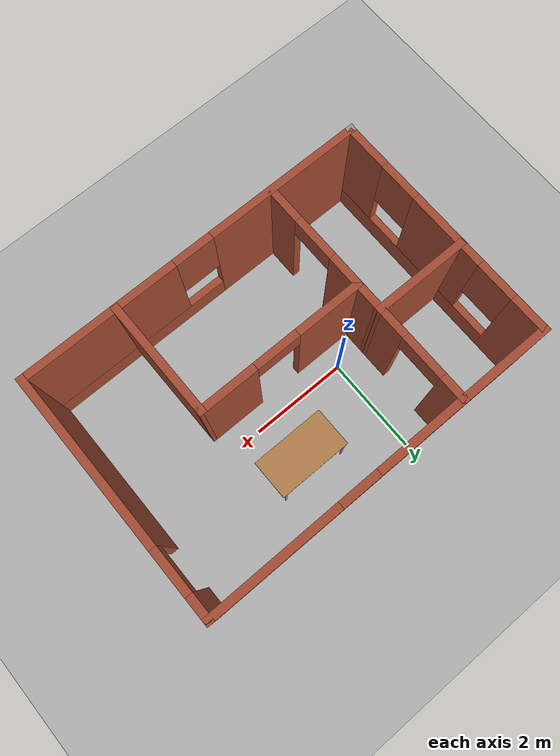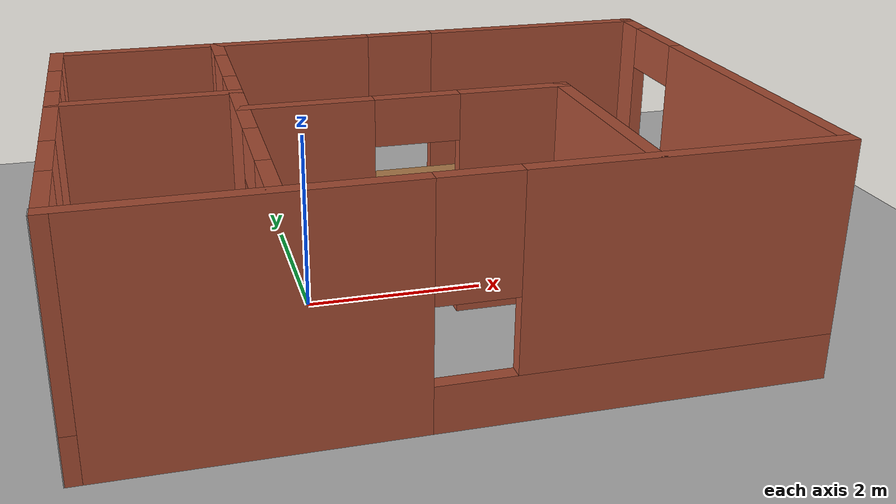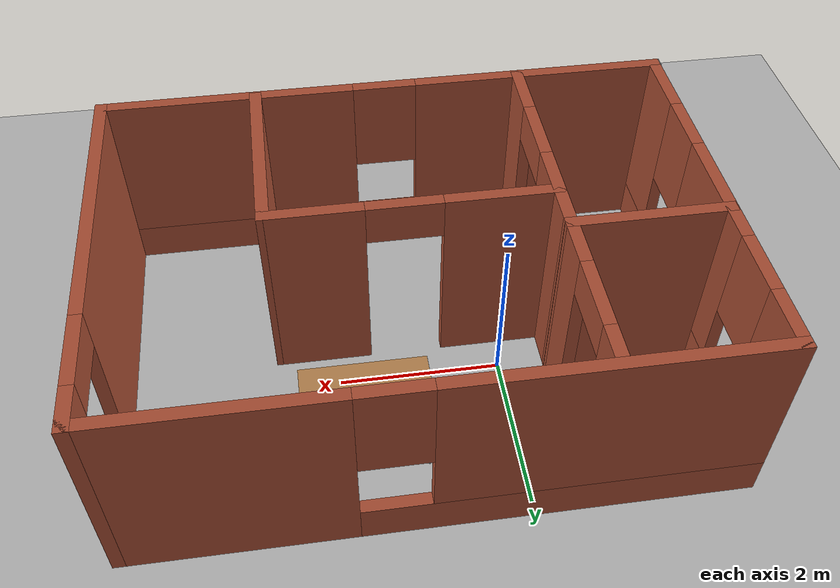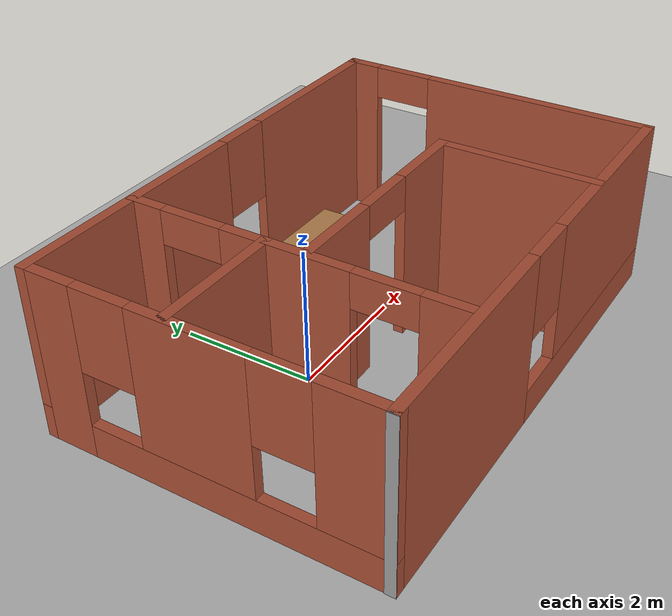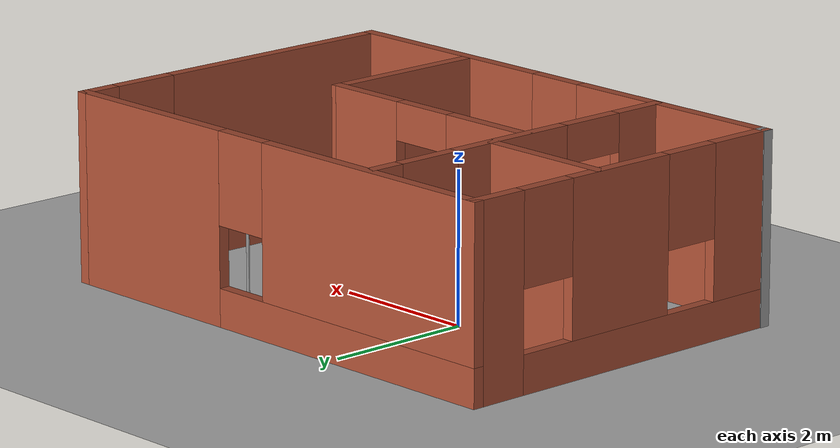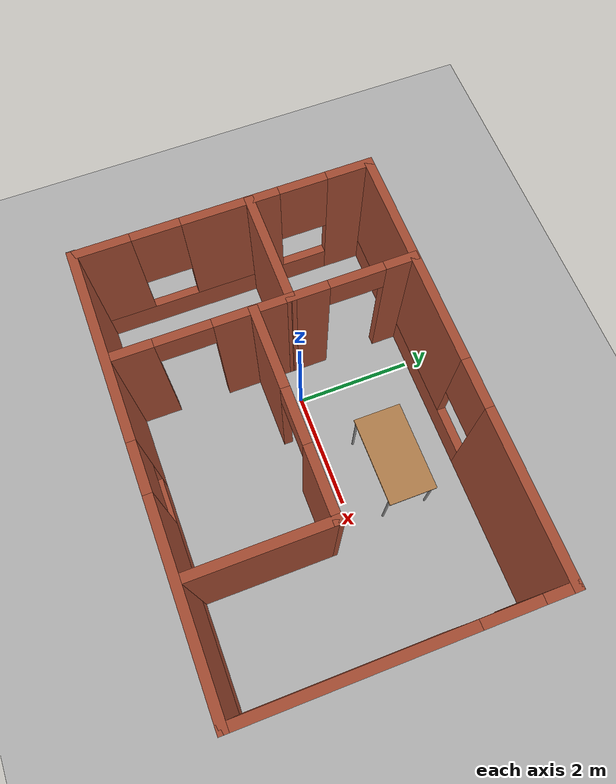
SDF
<sdf version="1.9">
 <world name="default">
  <gravity>0 0 -9.8</gravity>
  <magnetic_field>6e-06 2.3e-05 -4.2e-05</magnetic_field>
  <atmosphere type="adiabatic"/>
  <physics type="ode">
   <max_step_size>0.001</max_step_size>
   <real_time_factor>1</real_time_factor>
   <real_time_update_rate>1000</real_time_update_rate>
  </physics>
  <scene><ambient>0.4 0.4 0.4 1</ambient><background>0.7 0.7 0.7 1</background><shadows>true</shadows></scene>
  <model name="flat03">
   <pose>1.055 -0.325 0 0 -0 0</pose>
   <link name="Wall_0">
    <collision name="Wall_0_Collision">
     <geometry><box><size>0.16 0.15 2.5</size></box></geometry>
     <pose>0 0 1.25 0 -0 0</pose>
    </collision>
    <visual name="Wall_0_Visual">
     <pose>0 0 1.25 0 -0 0</pose>
     <geometry><box><size>0.16 0.15 2.5</size></box></geometry>
     <material>
      <script><uri>file://media/materials/scripts/gazebo.material</uri><name>Gazebo/Grey</name></script>
      <ambient>1 1 1 1</ambient>
     </material>
     <meta><layer>0</layer></meta>
    </visual>
    <pose>-3.55 -2.425 0 0 -0 0</pose>
    <inertial>
     <mass>1</mass>
     <inertia><ixx>1</ixx><ixy>0</ixy><ixz>0</ixz><iyy>1</iyy><iyz>0</iyz><izz>1</izz></inertia>
    </inertial>
   </link>
   <link name="Wall_1">
    <pose>0.005 -2.425 0 0 -0 0</pose>
    <visual name="Wall_1_Visual_0">
     <pose>-2.00678 0 1.25 0 -0 0</pose>
     <geometry><box><size>3.23644 0.15 2.5</size></box></geometry>
     <material>
      <script><uri>file://media/materials/scripts/gazebo.material</uri><name>Gazebo/Bricks</name></script>
      <ambient>0.435294 0.796078 0.67451 1</ambient>
     </material>
     <meta><layer>0</layer></meta>
    </visual>
    <collision name="Wall_1_Collision_0">
     <geometry><box><size>3.23644 0.15 2.5</size></box></geometry>
     <pose>-2.00678 0 1.25 0 -0 0</pose>
    </collision>
    <visual name="Wall_1_Visual_1">
     <pose>1.61822 0 0.25 0 -0 0</pose>
     <geometry><box><size>4.01356 0.15 0.5</size></box></geometry>
     <material>
      <script><uri>file://media/materials/scripts/gazebo.material</uri><name>Gazebo/Bricks</name></script>
      <ambient>0.435294 0.796078 0.67451 1</ambient>
     </material>
     <meta><layer>0</layer></meta>
    </visual>
    <collision name="Wall_1_Collision_1">
     <geometry><box><size>4.01356 0.15 0.5</size></box></geometry>
     <pose>1.61822 0 0.25 0 -0 0</pose>
    </collision>
    <visual name="Wall_1_Visual_2">
     <pose>2.01822 0 1.5 0 -0 0</pose>
     <geometry><box><size>3.21356 0.15 2</size></box></geometry>
     <material>
      <script><uri>file://media/materials/scripts/gazebo.material</uri><name>Gazebo/Bricks</name></script>
      <ambient>0.435294 0.796078 0.67451 1</ambient>
     </material>
     <meta><layer>0</layer></meta>
    </visual>
    <collision name="Wall_1_Collision_2">
     <geometry><box><size>3.21356 0.15 2</size></box></geometry>
     <pose>2.01822 0 1.5 0 -0 0</pose>
    </collision>
    <visual name="Wall_1_Visual_3">
     <pose>0.011439 0 1.9 0 -0 0</pose>
     <geometry><box><size>0.8 0.15 1.2</size></box></geometry>
     <material>
      <script><uri>file://media/materials/scripts/gazebo.material</uri><name>Gazebo/Bricks</name></script>
      <ambient>0.435294 0.796078 0.67451 1</ambient>
     </material>
     <meta><layer>0</layer></meta>
    </visual>
    <collision name="Wall_1_Collision_3">
     <geometry><box><size>0.8 0.15 1.2</size></box></geometry>
     <pose>0.011439 0 1.9 0 -0 0</pose>
    </collision>
    <inertial>
     <mass>1</mass>
     <inertia><ixx>1</ixx><ixy>0</ixy><ixz>0</ixz><iyy>1</iyy><iyz>0</iyz><izz>1</izz></inertia>
    </inertial>
   </link>
   <link name="Wall_14">
    <pose>-1.71527 -0.992815 0 0 0 -1.572</pose>
    <visual name="Wall_14_Visual_0">
     <pose>-0.836885 0 1.25 0 -0 0</pose>
     <geometry><box><size>1.29625 0.15 2.5</size></box></geometry>
     <material>
      <script><uri>file://media/materials/scripts/gazebo.material</uri><name>Gazebo/Bricks</name></script>
      <ambient>1 1 1 1</ambient>
     </material>
     <meta><layer>0</layer></meta>
    </visual>
    <collision name="Wall_14_Collision_0">
     <geometry><box><size>1.29625 0.15 2.5</size></box></geometry>
     <pose>-0.836885 0 1.25 0 -0 0</pose>
    </collision>
    <visual name="Wall_14_Visual_1">
     <pose>1.09812 0 1.25 0 -0 0</pose>
     <geometry><box><size>0.77377 0.15 2.5</size></box></geometry>
     <material>
      <script><uri>file://media/materials/scripts/gazebo.material</uri><name>Gazebo/Bricks</name></script>
      <ambient>1 1 1 1</ambient>
     </material>
     <meta><layer>0</layer></meta>
    </visual>
    <collision name="Wall_14_Collision_1">
     <geometry><box><size>0.77377 0.15 2.5</size></box></geometry>
     <pose>1.09812 0 1.25 0 -0 0</pose>
    </collision>
    <visual name="Wall_14_Visual_2">
     <pose>0.261239 0 2.25 0 -0 0</pose>
     <geometry><box><size>0.9 0.15 0.5</size></box></geometry>
     <material>
      <script><uri>file://media/materials/scripts/gazebo.material</uri><name>Gazebo/Bricks</name></script>
      <ambient>1 1 1 1</ambient>
     </material>
     <meta><layer>0</layer></meta>
    </visual>
    <collision name="Wall_14_Collision_2">
     <geometry><box><size>0.9 0.15 0.5</size></box></geometry>
     <pose>0.261239 0 2.25 0 -0 0</pose>
    </collision>
    <inertial>
     <mass>1</mass>
     <inertia><ixx>1</ixx><ixy>0</ixy><ixz>0</ixz><iyy>1</iyy><iyz>0</iyz><izz>1</izz></inertia>
    </inertial>
   </link>
   <link name="Wall_16">
    <pose>-0.027331 -0.154217 0 0 -0 0</pose>
    <visual name="Wall_16_Visual_0">
     <pose>-1.05556 0 1.25 0 -0 0</pose>
     <geometry><box><size>1.38888 0.15 2.5</size></box></geometry>
     <material>
      <script><uri>file://media/materials/scripts/gazebo.material</uri><name>Gazebo/Bricks</name></script>
      <ambient>1 0.764706 0.305882 1</ambient>
     </material>
     <meta><layer>0</layer></meta>
    </visual>
    <collision name="Wall_16_Collision_0">
     <geometry><box><size>1.38888 0.15 2.5</size></box></geometry>
     <pose>-1.05556 0 1.25 0 -0 0</pose>
    </collision>
    <visual name="Wall_16_Visual_1">
     <pose>1.14444 0 1.25 0 -0 0</pose>
     <geometry><box><size>1.21112 0.15 2.5</size></box></geometry>
     <material>
      <script><uri>file://media/materials/scripts/gazebo.material</uri><name>Gazebo/Bricks</name></script>
      <ambient>1 0.764706 0.305882 1</ambient>
     </material>
     <meta><layer>0</layer></meta>
    </visual>
    <collision name="Wall_16_Collision_1">
     <geometry><box><size>1.21112 0.15 2.5</size></box></geometry>
     <pose>1.14444 0 1.25 0 -0 0</pose>
    </collision>
    <visual name="Wall_16_Visual_2">
     <pose>0.088882 0 2.25 0 -0 0</pose>
     <geometry><box><size>0.9 0.15 0.5</size></box></geometry>
     <material>
      <script><uri>file://media/materials/scripts/gazebo.material</uri><name>Gazebo/Bricks</name></script>
      <ambient>1 0.764706 0.305882 1</ambient>
     </material>
     <meta><layer>0</layer></meta>
    </visual>
    <collision name="Wall_16_Collision_2">
     <geometry><box><size>0.9 0.15 0.5</size></box></geometry>
     <pose>0.088882 0 2.25 0 -0 0</pose>
    </collision>
    <inertial>
     <mass>1</mass>
     <inertia><ixx>1</ixx><ixy>0</ixy><ixz>0</ixz><iyy>1</iyy><iyz>0</iyz><izz>1</izz></inertia>
    </inertial>
   </link>
   <link name="Wall_17">
    <collision name="Wall_17_Collision">
     <geometry><box><size>2.40353 0.15 2.5</size></box></geometry>
     <pose>0 0 1.25 0 -0 0</pose>
    </collision>
    <visual name="Wall_17_Visual">
     <pose>0 0 1.25 0 -0 0</pose>
     <geometry><box><size>2.40353 0.15 2.5</size></box></geometry>
     <material>
      <script><uri>file://media/materials/scripts/gazebo.material</uri><name>Gazebo/Bricks</name></script>
      <ambient>1 0 0.498039 1</ambient>
     </material>
     <meta><layer>0</layer></meta>
    </visual>
    <pose>1.64817 -1.28098 0 0 0 -1.57035</pose>
    <inertial>
     <mass>1</mass>
     <inertia><ixx>1</ixx><ixy>0</ixy><ixz>0</ixz><iyy>1</iyy><iyz>0</iyz><izz>1</izz></inertia>
    </inertial>
   </link>
   <link name="Wall_2">
    <pose>3.555 0 0 0 -0 1.5708</pose>
    <visual name="Wall_2_Visual_0">
     <pose>-0.723704 0 1.25 0 -0 0</pose>
     <geometry><box><size>3.55259 0.15 2.5</size></box></geometry>
     <material>
      <script><uri>file://media/materials/scripts/gazebo.material</uri><name>Gazebo/Bricks</name></script>
      <ambient>0.435294 0.796078 0.67451 1</ambient>
     </material>
     <meta><layer>0</layer></meta>
    </visual>
    <collision name="Wall_2_Collision_0">
     <geometry><box><size>3.55259 0.15 2.5</size></box></geometry>
     <pose>-0.723704 0 1.25 0 -0 0</pose>
    </collision>
    <visual name="Wall_2_Visual_1">
     <pose>2.2263 0 1.25 0 -0 0</pose>
     <geometry><box><size>0.547408 0.15 2.5</size></box></geometry>
     <material>
      <script><uri>file://media/materials/scripts/gazebo.material</uri><name>Gazebo/Bricks</name></script>
      <ambient>0.435294 0.796078 0.67451 1</ambient>
     </material>
     <meta><layer>0</layer></meta>
    </visual>
    <collision name="Wall_2_Collision_1">
     <geometry><box><size>0.547408 0.15 2.5</size></box></geometry>
     <pose>2.2263 0 1.25 0 -0 0</pose>
    </collision>
    <visual name="Wall_2_Visual_2">
     <pose>1.50259 0 2.25 0 -0 0</pose>
     <geometry><box><size>0.9 0.15 0.5</size></box></geometry>
     <material>
      <script><uri>file://media/materials/scripts/gazebo.material</uri><name>Gazebo/Bricks</name></script>
      <ambient>0.435294 0.796078 0.67451 1</ambient>
     </material>
     <meta><layer>0</layer></meta>
    </visual>
    <collision name="Wall_2_Collision_2">
     <geometry><box><size>0.9 0.15 0.5</size></box></geometry>
     <pose>1.50259 0 2.25 0 -0 0</pose>
    </collision>
    <inertial>
     <mass>1</mass>
     <inertia><ixx>1</ixx><ixy>0</ixy><ixz>0</ixz><iyy>1</iyy><iyz>0</iyz><izz>1</izz></inertia>
    </inertial>
   </link>
   <link name="Wall_3">
    <pose>0.005 2.425 0 0 -0 3.14159</pose>
    <visual name="Wall_3_Visual_0">
     <pose>-2.26634 0 1.25 0 -0 0</pose>
     <geometry><box><size>2.71732 0.15 2.5</size></box></geometry>
     <material>
      <script><uri>file://media/materials/scripts/gazebo.material</uri><name>Gazebo/Bricks</name></script>
      <ambient>1 0.764706 0.305882 1</ambient>
     </material>
     <meta><layer>0</layer></meta>
    </visual>
    <collision name="Wall_3_Collision_0">
     <geometry><box><size>2.71732 0.15 2.5</size></box></geometry>
     <pose>-2.26634 0 1.25 0 -0 0</pose>
    </collision>
    <visual name="Wall_3_Visual_1">
     <pose>1.35866 0 0.25 0 -0 0</pose>
     <geometry><box><size>4.53268 0.15 0.5</size></box></geometry>
     <material>
      <script><uri>file://media/materials/scripts/gazebo.material</uri><name>Gazebo/Bricks</name></script>
      <ambient>1 0.764706 0.305882 1</ambient>
     </material>
     <meta><layer>0</layer></meta>
    </visual>
    <collision name="Wall_3_Collision_1">
     <geometry><box><size>4.53268 0.15 0.5</size></box></geometry>
     <pose>1.35866 0 0.25 0 -0 0</pose>
    </collision>
    <visual name="Wall_3_Visual_2">
     <pose>1.75866 0 1.5 0 -0 0</pose>
     <geometry><box><size>3.73268 0.15 2</size></box></geometry>
     <material>
      <script><uri>file://media/materials/scripts/gazebo.material</uri><name>Gazebo/Bricks</name></script>
      <ambient>1 0.764706 0.305882 1</ambient>
     </material>
     <meta><layer>0</layer></meta>
    </visual>
    <collision name="Wall_3_Collision_2">
     <geometry><box><size>3.73268 0.15 2</size></box></geometry>
     <pose>1.75866 0 1.5 0 -0 0</pose>
    </collision>
    <visual name="Wall_3_Visual_3">
     <pose>-0.507676 0 1.9 0 -0 0</pose>
     <geometry><box><size>0.8 0.15 1.2</size></box></geometry>
     <material>
      <script><uri>file://media/materials/scripts/gazebo.material</uri><name>Gazebo/Bricks</name></script>
      <ambient>1 0.764706 0.305882 1</ambient>
     </material>
     <meta><layer>0</layer></meta>
    </visual>
    <collision name="Wall_3_Collision_3">
     <geometry><box><size>0.8 0.15 1.2</size></box></geometry>
     <pose>-0.507676 0 1.9 0 -0 0</pose>
    </collision>
    <inertial>
     <mass>1</mass>
     <inertia><ixx>1</ixx><ixy>0</ixy><ixz>0</ixz><iyy>1</iyy><iyz>0</iyz><izz>1</izz></inertia>
    </inertial>
   </link>
   <link name="Wall_4">
    <pose>-3.545 0 0 0 0 -1.5708</pose>
    <visual name="Wall_4_Visual_0">
     <pose>-2.09979 0 1.25 0 -0 0</pose>
     <geometry><box><size>0.800414 0.15 2.5</size></box></geometry>
     <material>
      <script><uri>file://media/materials/scripts/gazebo.material</uri><name>Gazebo/Bricks</name></script>
      <ambient>1 0 0.498039 1</ambient>
     </material>
     <meta><layer>0</layer></meta>
    </visual>
    <collision name="Wall_4_Collision_0">
     <geometry><box><size>0.800414 0.15 2.5</size></box></geometry>
     <pose>-2.09979 0 1.25 0 -0 0</pose>
    </collision>
    <visual name="Wall_4_Visual_1">
     <pose>0.400207 0 0.25 0 -0 0</pose>
     <geometry><box><size>4.19959 0.15 0.5</size></box></geometry>
     <material>
      <script><uri>file://media/materials/scripts/gazebo.material</uri><name>Gazebo/Bricks</name></script>
      <ambient>1 0 0.498039 1</ambient>
     </material>
     <meta><layer>0</layer></meta>
    </visual>
    <collision name="Wall_4_Collision_1">
     <geometry><box><size>4.19959 0.15 0.5</size></box></geometry>
     <pose>0.400207 0 0.25 0 -0 0</pose>
    </collision>
    <visual name="Wall_4_Visual_2">
     <pose>-0.092828 0 1.5 0 -0 0</pose>
     <geometry><box><size>1.61352 0.15 2</size></box></geometry>
     <material>
      <script><uri>file://media/materials/scripts/gazebo.material</uri><name>Gazebo/Bricks</name></script>
      <ambient>1 0 0.498039 1</ambient>
     </material>
     <meta><layer>0</layer></meta>
    </visual>
    <collision name="Wall_4_Collision_2">
     <geometry><box><size>1.61352 0.15 2</size></box></geometry>
     <pose>-0.092828 0 1.5 0 -0 0</pose>
    </collision>
    <visual name="Wall_4_Visual_3">
     <pose>2.00697 0 1.5 0 -0 0</pose>
     <geometry><box><size>0.986071 0.15 2</size></box></geometry>
     <material>
      <script><uri>file://media/materials/scripts/gazebo.material</uri><name>Gazebo/Bricks</name></script>
      <ambient>1 0 0.498039 1</ambient>
     </material>
     <meta><layer>0</layer></meta>
    </visual>
    <collision name="Wall_4_Collision_3">
     <geometry><box><size>0.986071 0.15 2</size></box></geometry>
     <pose>2.00697 0 1.5 0 -0 0</pose>
    </collision>
    <visual name="Wall_4_Visual_4">
     <pose>-1.29959 0 1.9 0 -0 0</pose>
     <geometry><box><size>0.8 0.15 1.2</size></box></geometry>
     <material>
      <script><uri>file://media/materials/scripts/gazebo.material</uri><name>Gazebo/Bricks</name></script>
      <ambient>1 0 0.498039 1</ambient>
     </material>
     <meta><layer>0</layer></meta>
    </visual>
    <collision name="Wall_4_Collision_4">
     <geometry><box><size>0.8 0.15 1.2</size></box></geometry>
     <pose>-1.29959 0 1.9 0 -0 0</pose>
    </collision>
    <visual name="Wall_4_Visual_5">
     <pose>1.11393 0 1.9 0 -0 0</pose>
     <geometry><box><size>0.8 0.15 1.2</size></box></geometry>
     <material>
      <script><uri>file://media/materials/scripts/gazebo.material</uri><name>Gazebo/Bricks</name></script>
      <ambient>1 0 0.498039 1</ambient>
     </material>
     <meta><layer>0</layer></meta>
    </visual>
    <collision name="Wall_4_Collision_5">
     <geometry><box><size>0.8 0.15 1.2</size></box></geometry>
     <pose>1.11393 0 1.9 0 -0 0</pose>
    </collision>
    <inertial>
     <mass>1</mass>
     <inertia><ixx>1</ixx><ixy>0</ixy><ixz>0</ixz><iyy>1</iyy><iyz>0</iyz><izz>1</izz></inertia>
    </inertial>
   </link>
   <link name="Wall_6">
    <collision name="Wall_6_Collision">
     <geometry><box><size>1.97088 0.15 2.5</size></box></geometry>
     <pose>0 0 1.25 0 -0 0</pose>
    </collision>
    <visual name="Wall_6_Visual">
     <pose>0 0 1.25 0 -0 0</pose>
     <geometry><box><size>1.97088 0.15 2.5</size></box></geometry>
     <material>
      <script><uri>file://media/materials/scripts/gazebo.material</uri><name>Gazebo/Bricks</name></script>
      <ambient>1 1 1 1</ambient>
     </material>
     <meta><layer>0</layer></meta>
    </visual>
    <pose>-2.62401 0.417132 0 0 -0 6.8e-05</pose>
    <inertial>
     <mass>1</mass>
     <inertia><ixx>1</ixx><ixy>0</ixy><ixz>0</ixz><iyy>1</iyy><iyz>0</iyz><izz>1</izz></inertia>
    </inertial>
   </link>
   <link name="Wall_7">
    <pose>-1.71475 1.41146 0 0 -0 1.57197</pose>
    <visual name="Wall_7_Visual_0">
     <pose>-0.72529 0 1.25 0 -0 0</pose>
     <geometry><box><size>0.687956 0.15 2.5</size></box></geometry>
     <material>
      <script><uri>file://media/materials/scripts/gazebo.material</uri><name>Gazebo/Bricks</name></script>
      <ambient>1 1 1 1</ambient>
     </material>
     <meta><layer>0</layer></meta>
    </visual>
    <collision name="Wall_7_Collision_0">
     <geometry><box><size>0.687956 0.15 2.5</size></box></geometry>
     <pose>-0.72529 0 1.25 0 -0 0</pose>
    </collision>
    <visual name="Wall_7_Visual_1">
     <pose>0.793978 0 1.25 0 -0 0</pose>
     <geometry><box><size>0.55058 0.15 2.5</size></box></geometry>
     <material>
      <script><uri>file://media/materials/scripts/gazebo.material</uri><name>Gazebo/Bricks</name></script>
      <ambient>1 1 1 1</ambient>
     </material>
     <meta><layer>0</layer></meta>
    </visual>
    <collision name="Wall_7_Collision_1">
     <geometry><box><size>0.55058 0.15 2.5</size></box></geometry>
     <pose>0.793978 0 1.25 0 -0 0</pose>
    </collision>
    <visual name="Wall_7_Visual_2">
     <pose>0.068688 0 2.25 0 -0 0</pose>
     <geometry><box><size>0.9 0.15 0.5</size></box></geometry>
     <material>
      <script><uri>file://media/materials/scripts/gazebo.material</uri><name>Gazebo/Bricks</name></script>
      <ambient>1 1 1 1</ambient>
     </material>
     <meta><layer>0</layer></meta>
    </visual>
    <collision name="Wall_7_Collision_2">
     <geometry><box><size>0.9 0.15 0.5</size></box></geometry>
     <pose>0.068688 0 2.25 0 -0 0</pose>
    </collision>
    <inertial>
     <mass>1</mass>
     <inertia><ixx>1</ixx><ixy>0</ixy><ixz>0</ixz><iyy>1</iyy><iyz>0</iyz><izz>1</izz></inertia>
    </inertial>
   </link>
   <static>true</static>
  </model>
  <model name="ground_plane">
   <static>true</static>
   <link name="link">
    <collision name="collision">
     <geometry><plane><normal>0 0 1</normal><size>100 100</size></plane></geometry>
     <surface><friction><ode><mu>100</mu><mu2>50</mu2></ode></friction></surface>
    </collision>
    <visual name="visual">
     <cast_shadows>false</cast_shadows>
     <geometry><plane><normal>0 0 1</normal><size>100 100</size></plane></geometry>
     <material>
      <ambient>0.3 0.3 0.3 1</ambient>
      <diffuse>0.7 0.7 0.7 1</diffuse>
      <specular>0.01 0.01 0.01 1</specular>
     </material>
    </visual>
    <inertial>
     <mass>1</mass>
     <inertia><ixx>1</ixx><ixy>0</ixy><ixz>0</ixz><iyy>1</iyy><iyz>0</iyz><izz>1</izz></inertia>
    </inertial>
   </link>
   <pose>-3.27364 0.089503 0 0 -0 0</pose>
  </model>
  <model name="Table">
   <static>true</static>
   <link name="link">
    <collision name="surface">
     <pose>0 0 1.0 0 0 0</pose>
     <geometry><box><size>1.5 0.8 0.03</size></box></geometry>
     <surface><friction><ode><mu>0.59999999999999998</mu><mu2>0.59999999999999998</mu2></ode></friction></surface>
    </collision>
    <visual name="visual1">
     <pose>0 0 1.0 0 0 0</pose>
     <geometry><box><size>1.5 0.8 0.03</size></box></geometry>
     <material>
      <diffuse>1 1 1 1</diffuse>
      <script><uri>file://media/materials/scripts/gazebo.material</uri><name>Gazebo/Wood</name></script>
      <pbr>
       <metal>
        <albedo_map>https://fuel.gazebosim.org/1.0/openrobotics/models/table/4/files/Table_Diffuse.jpg</albedo_map>
       </metal>
      </pbr>
     </material>
    </visual>
    <collision name="front_left_leg">
     <pose>0.68 0.38 0.5 0 0 0</pose>
     <geometry><cylinder><radius>0.02</radius><length>1</length></cylinder></geometry>
    </collision>
    <visual name="front_left_leg">
     <pose>0.68 0.38 0.5 0 0 0</pose>
     <geometry><cylinder><radius>0.02</radius><length>1</length></cylinder></geometry>
     <material>
      <diffuse>0.5 0.5 0.5 1</diffuse>
      <script><uri>file://media/materials/scripts/gazebo.material</uri><name>Gazebo/Grey</name></script>
     </material>
    </visual>
    <collision name="front_right_leg">
     <pose>0.68 -0.38 0.5 0 0 0</pose>
     <geometry><cylinder><radius>0.02</radius><length>1</length></cylinder></geometry>
    </collision>
    <visual name="front_right_leg">
     <pose>0.68 -0.38 0.5 0 0 0</pose>
     <geometry><cylinder><radius>0.02</radius><length>1</length></cylinder></geometry>
     <material>
      <diffuse>0.5 0.5 0.5 1</diffuse>
      <script><uri>file://media/materials/scripts/gazebo.material</uri><name>Gazebo/Grey</name></script>
     </material>
    </visual>
    <collision name="back_right_leg">
     <pose>-0.68 -0.38 0.5 0 0 0</pose>
     <geometry><cylinder><radius>0.02</radius><length>1</length></cylinder></geometry>
    </collision>
    <visual name="back_right_leg">
     <pose>-0.68 -0.38 0.5 0 0 0</pose>
     <geometry><cylinder><radius>0.02</radius><length>1</length></cylinder></geometry>
     <material>
      <diffuse>0.5 0.5 0.5 1</diffuse>
      <script><uri>file://media/materials/scripts/gazebo.material</uri><name>Gazebo/Grey</name></script>
     </material>
    </visual>
    <collision name="back_left_leg">
     <pose>-0.68 0.38 0.5 0 0 0</pose>
     <geometry><cylinder><radius>0.02</radius><length>1</length></cylinder></geometry>
    </collision>
    <visual name="back_left_leg">
     <pose>-0.68 0.38 0.5 0 0 0</pose>
     <geometry><cylinder><radius>0.02</radius><length>1</length></cylinder></geometry>
     <material>
      <diffuse>0.5 0.5 0.5 1</diffuse>
      <script><uri>file://media/materials/scripts/gazebo.material</uri><name>Gazebo/Grey</name></script>
     </material>
    </visual>
    <inertial>
     <mass>1</mass>
     <inertia><ixx>1</ixx><ixy>0</ixy><ixz>0</ixz><iyy>1</iyy><iyz>0</iyz><izz>1</izz></inertia>
    </inertial>
   </link>
   <pose>1.74975 0.939047 0 0 -0 0</pose>
  </model>
 </world>
</sdf>
